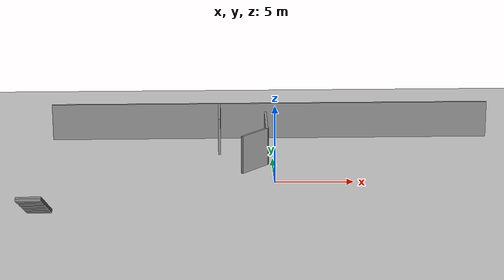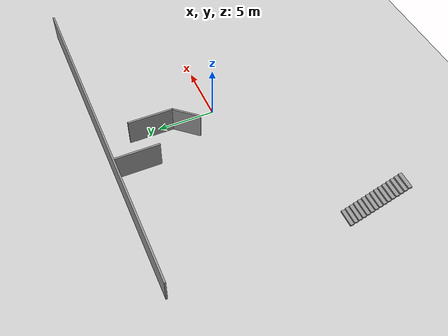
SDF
<sdf version="1.7">
 <world name="default">
  <model name="ground_plane">
   <static>1</static>
   <link name="link">
    <collision name="collision">
     <geometry><plane><normal>0 0 1</normal><size>100 100</size></plane></geometry>
     <surface>
      <contact><collide_bitmask>65535</collide_bitmask></contact>
      <friction><ode><mu>100</mu><mu2>50</mu2></ode></friction>
     </surface>
    </collision>
    <visual name="visual">
     <cast_shadows>0</cast_shadows>
     <geometry><plane><normal>0 0 1</normal><size>100 100</size></plane></geometry>
     <material>
      <script><uri>file://media/materials/scripts/gazebo.material</uri><name>Gazebo/Grey</name></script>
     </material>
    </visual>
   </link>
  </model>
  <model name="Untitled_0">
   <link name="Stairs_0">
    <visual name="Stairs_0_Visual_0">
     <pose>-14.3145 -5.2358 0.083333 0 -0 0</pose>
     <geometry><box><size>1.45112 0.330096 0.166667</size></box></geometry>
     <material>
      <script><uri>file://media/materials/scripts/gazebo.material</uri><name>Gazebo/Grey</name></script>
      <ambient>1 1 1 1</ambient>
      <shader type="pixel"/>
     </material>
     <meta><layer>0</layer></meta>
    </visual>
    <visual name="Stairs_0_Visual_1">
     <pose>-14.3145 -5.5659 0.25 0 -0 0</pose>
     <geometry><box><size>1.45112 0.330096 0.166667</size></box></geometry>
     <material>
      <script><uri>file://media/materials/scripts/gazebo.material</uri><name>Gazebo/Grey</name></script>
      <ambient>1 1 1 1</ambient>
      <shader type="pixel"/>
     </material>
     <meta><layer>0</layer></meta>
    </visual>
    <visual name="Stairs_0_Visual_2">
     <pose>-14.3145 -5.89599 0.416667 0 -0 0</pose>
     <geometry><box><size>1.45112 0.330096 0.166667</size></box></geometry>
     <material>
      <script><uri>file://media/materials/scripts/gazebo.material</uri><name>Gazebo/Grey</name></script>
      <ambient>1 1 1 1</ambient>
      <shader type="pixel"/>
     </material>
     <meta><layer>0</layer></meta>
    </visual>
    <visual name="Stairs_0_Visual_3">
     <pose>-14.3145 -6.22609 0.583333 0 -0 0</pose>
     <geometry><box><size>1.45112 0.330096 0.166667</size></box></geometry>
     <material>
      <script><uri>file://media/materials/scripts/gazebo.material</uri><name>Gazebo/Grey</name></script>
      <ambient>1 1 1 1</ambient>
      <shader type="pixel"/>
     </material>
     <meta><layer>0</layer></meta>
    </visual>
    <visual name="Stairs_0_Visual_4">
     <pose>-14.3145 -6.55619 0.75 0 -0 0</pose>
     <geometry><box><size>1.45112 0.330096 0.166667</size></box></geometry>
     <material>
      <script><uri>file://media/materials/scripts/gazebo.material</uri><name>Gazebo/Grey</name></script>
      <ambient>1 1 1 1</ambient>
      <shader type="pixel"/>
     </material>
     <meta><layer>0</layer></meta>
    </visual>
    <visual name="Stairs_0_Visual_5">
     <pose>-14.3145 -6.88628 0.916667 0 -0 0</pose>
     <geometry><box><size>1.45112 0.330096 0.166667</size></box></geometry>
     <material>
      <script><uri>file://media/materials/scripts/gazebo.material</uri><name>Gazebo/Grey</name></script>
      <ambient>1 1 1 1</ambient>
      <shader type="pixel"/>
     </material>
     <meta><layer>0</layer></meta>
    </visual>
    <visual name="Stairs_0_Visual_6">
     <pose>-14.3145 -7.21638 1.08333 0 -0 0</pose>
     <geometry><box><size>1.45112 0.330096 0.166667</size></box></geometry>
     <material>
      <script><uri>file://media/materials/scripts/gazebo.material</uri><name>Gazebo/Grey</name></script>
      <ambient>1 1 1 1</ambient>
      <shader type="pixel"/>
     </material>
     <meta><layer>0</layer></meta>
    </visual>
    <visual name="Stairs_0_Visual_7">
     <pose>-14.3145 -7.54648 1.25 0 -0 0</pose>
     <geometry><box><size>1.45112 0.330096 0.166667</size></box></geometry>
     <material>
      <script><uri>file://media/materials/scripts/gazebo.material</uri><name>Gazebo/Grey</name></script>
      <ambient>1 1 1 1</ambient>
      <shader type="pixel"/>
     </material>
     <meta><layer>0</layer></meta>
    </visual>
    <visual name="Stairs_0_Visual_8">
     <pose>-14.3145 -7.87657 1.41667 0 -0 0</pose>
     <geometry><box><size>1.45112 0.330096 0.166667</size></box></geometry>
     <material>
      <script><uri>file://media/materials/scripts/gazebo.material</uri><name>Gazebo/Grey</name></script>
      <ambient>1 1 1 1</ambient>
      <shader type="pixel"/>
     </material>
     <meta><layer>0</layer></meta>
    </visual>
    <visual name="Stairs_0_Visual_9">
     <pose>-14.3145 -8.20667 1.58333 0 -0 0</pose>
     <geometry><box><size>1.45112 0.330096 0.166667</size></box></geometry>
     <material>
      <script><uri>file://media/materials/scripts/gazebo.material</uri><name>Gazebo/Grey</name></script>
      <ambient>1 1 1 1</ambient>
      <shader type="pixel"/>
     </material>
     <meta><layer>0</layer></meta>
    </visual>
    <visual name="Stairs_0_Visual_10">
     <pose>-14.3145 -8.53676 1.75 0 -0 0</pose>
     <geometry><box><size>1.45112 0.330096 0.166667</size></box></geometry>
     <material>
      <script><uri>file://media/materials/scripts/gazebo.material</uri><name>Gazebo/Grey</name></script>
      <ambient>1 1 1 1</ambient>
      <shader type="pixel"/>
     </material>
     <meta><layer>0</layer></meta>
    </visual>
    <visual name="Stairs_0_Visual_11">
     <pose>-14.3145 -8.86686 1.91667 0 -0 0</pose>
     <geometry><box><size>1.45112 0.330096 0.166667</size></box></geometry>
     <material>
      <script><uri>file://media/materials/scripts/gazebo.material</uri><name>Gazebo/Grey</name></script>
      <ambient>1 1 1 1</ambient>
      <shader type="pixel"/>
     </material>
     <meta><layer>0</layer></meta>
    </visual>
    <visual name="Stairs_0_Visual_12">
     <pose>-14.3145 -9.19696 2.08333 0 -0 0</pose>
     <geometry><box><size>1.45112 0.330096 0.166667</size></box></geometry>
     <material>
      <script><uri>file://media/materials/scripts/gazebo.material</uri><name>Gazebo/Grey</name></script>
      <ambient>1 1 1 1</ambient>
      <shader type="pixel"/>
     </material>
     <meta><layer>0</layer></meta>
    </visual>
    <visual name="Stairs_0_Visual_13">
     <pose>-14.3145 -9.52705 2.25 0 -0 0</pose>
     <geometry><box><size>1.45112 0.330096 0.166667</size></box></geometry>
     <material>
      <script><uri>file://media/materials/scripts/gazebo.material</uri><name>Gazebo/Grey</name></script>
      <ambient>1 1 1 1</ambient>
      <shader type="pixel"/>
     </material>
     <meta><layer>0</layer></meta>
    </visual>
    <visual name="Stairs_0_Visual_14">
     <pose>-14.3145 -9.85715 2.41667 0 -0 0</pose>
     <geometry><box><size>1.45112 0.330096 0.166667</size></box></geometry>
     <material>
      <script><uri>file://media/materials/scripts/gazebo.material</uri><name>Gazebo/Grey</name></script>
      <ambient>1 1 1 1</ambient>
      <shader type="pixel"/>
     </material>
     <meta><layer>0</layer></meta>
    </visual>
    <collision name="Stairs_0_Collision_0">
     <pose>-14.3145 -5.2358 0.083333 0 -0 0</pose>
     <geometry><box><size>1.45112 0.330096 0.166667</size></box></geometry>
     <surface>
      <friction>
       <ode><mu>1</mu><mu2>1</mu2><fdir1>0 0 0</fdir1><slip1>0</slip1><slip2>0</slip2></ode>
       <torsional>
        <coefficient>1</coefficient>
        <patch_radius>0</patch_radius>
        <surface_radius>0</surface_radius>
        <use_patch_radius>1</use_patch_radius>
        <ode><slip>0</slip></ode>
       </torsional>
      </friction>
      <bounce><restitution_coefficient>0</restitution_coefficient><threshold>1e+06</threshold></bounce>
      <contact>
       <collide_without_contact>0</collide_without_contact>
       <collide_without_contact_bitmask>1</collide_without_contact_bitmask>
       <collide_bitmask>1</collide_bitmask>
       <ode>
        <soft_cfm>0</soft_cfm>
        <soft_erp>0.2</soft_erp>
        <kp>1e+13</kp>
        <kd>1</kd>
        <max_vel>0.01</max_vel>
        <min_depth>0</min_depth>
       </ode>
       <bullet>
        <split_impulse>1</split_impulse>
        <split_impulse_penetration_threshold>-0.01</split_impulse_penetration_threshold>
        <soft_cfm>0</soft_cfm>
        <soft_erp>0.2</soft_erp>
        <kp>1e+13</kp>
        <kd>1</kd>
       </bullet>
      </contact>
     </surface>
    </collision>
    <collision name="Stairs_0_Collision_1">
     <pose>-14.3145 -5.5659 0.25 0 -0 0</pose>
     <geometry><box><size>1.45112 0.330096 0.166667</size></box></geometry>
     <surface>
      <friction>
       <ode><mu>1</mu><mu2>1</mu2><fdir1>0 0 0</fdir1><slip1>0</slip1><slip2>0</slip2></ode>
       <torsional>
        <coefficient>1</coefficient>
        <patch_radius>0</patch_radius>
        <surface_radius>0</surface_radius>
        <use_patch_radius>1</use_patch_radius>
        <ode><slip>0</slip></ode>
       </torsional>
      </friction>
      <bounce><restitution_coefficient>0</restitution_coefficient><threshold>1e+06</threshold></bounce>
      <contact>
       <collide_without_contact>0</collide_without_contact>
       <collide_without_contact_bitmask>1</collide_without_contact_bitmask>
       <collide_bitmask>1</collide_bitmask>
       <ode>
        <soft_cfm>0</soft_cfm>
        <soft_erp>0.2</soft_erp>
        <kp>1e+13</kp>
        <kd>1</kd>
        <max_vel>0.01</max_vel>
        <min_depth>0</min_depth>
       </ode>
       <bullet>
        <split_impulse>1</split_impulse>
        <split_impulse_penetration_threshold>-0.01</split_impulse_penetration_threshold>
        <soft_cfm>0</soft_cfm>
        <soft_erp>0.2</soft_erp>
        <kp>1e+13</kp>
        <kd>1</kd>
       </bullet>
      </contact>
     </surface>
    </collision>
    <collision name="Stairs_0_Collision_2">
     <pose>-14.3145 -5.89599 0.416667 0 -0 0</pose>
     <geometry><box><size>1.45112 0.330096 0.166667</size></box></geometry>
     <surface>
      <friction>
       <ode><mu>1</mu><mu2>1</mu2><fdir1>0 0 0</fdir1><slip1>0</slip1><slip2>0</slip2></ode>
       <torsional>
        <coefficient>1</coefficient>
        <patch_radius>0</patch_radius>
        <surface_radius>0</surface_radius>
        <use_patch_radius>1</use_patch_radius>
        <ode><slip>0</slip></ode>
       </torsional>
      </friction>
      <bounce><restitution_coefficient>0</restitution_coefficient><threshold>1e+06</threshold></bounce>
      <contact>
       <collide_without_contact>0</collide_without_contact>
       <collide_without_contact_bitmask>1</collide_without_contact_bitmask>
       <collide_bitmask>1</collide_bitmask>
       <ode>
        <soft_cfm>0</soft_cfm>
        <soft_erp>0.2</soft_erp>
        <kp>1e+13</kp>
        <kd>1</kd>
        <max_vel>0.01</max_vel>
        <min_depth>0</min_depth>
       </ode>
       <bullet>
        <split_impulse>1</split_impulse>
        <split_impulse_penetration_threshold>-0.01</split_impulse_penetration_threshold>
        <soft_cfm>0</soft_cfm>
        <soft_erp>0.2</soft_erp>
        <kp>1e+13</kp>
        <kd>1</kd>
       </bullet>
      </contact>
     </surface>
    </collision>
    <collision name="Stairs_0_Collision_4">
     <pose>-14.3145 -6.55619 0.75 0 -0 0</pose>
     <geometry><box><size>1.45112 0.330096 0.166667</size></box></geometry>
     <surface>
      <friction>
       <ode><mu>1</mu><mu2>1</mu2><fdir1>0 0 0</fdir1><slip1>0</slip1><slip2>0</slip2></ode>
       <torsional>
        <coefficient>1</coefficient>
        <patch_radius>0</patch_radius>
        <surface_radius>0</surface_radius>
        <use_patch_radius>1</use_patch_radius>
        <ode><slip>0</slip></ode>
       </torsional>
      </friction>
      <bounce><restitution_coefficient>0</restitution_coefficient><threshold>1e+06</threshold></bounce>
      <contact>
       <collide_without_contact>0</collide_without_contact>
       <collide_without_contact_bitmask>1</collide_without_contact_bitmask>
       <collide_bitmask>1</collide_bitmask>
       <ode>
        <soft_cfm>0</soft_cfm>
        <soft_erp>0.2</soft_erp>
        <kp>1e+13</kp>
        <kd>1</kd>
        <max_vel>0.01</max_vel>
        <min_depth>0</min_depth>
       </ode>
       <bullet>
        <split_impulse>1</split_impulse>
        <split_impulse_penetration_threshold>-0.01</split_impulse_penetration_threshold>
        <soft_cfm>0</soft_cfm>
        <soft_erp>0.2</soft_erp>
        <kp>1e+13</kp>
        <kd>1</kd>
       </bullet>
      </contact>
     </surface>
    </collision>
    <collision name="Stairs_0_Collision_3">
     <pose>-14.3145 -6.22609 0.583333 0 -0 0</pose>
     <geometry><box><size>1.45112 0.330096 0.166667</size></box></geometry>
     <surface>
      <friction>
       <ode><mu>1</mu><mu2>1</mu2><fdir1>0 0 0</fdir1><slip1>0</slip1><slip2>0</slip2></ode>
       <torsional>
        <coefficient>1</coefficient>
        <patch_radius>0</patch_radius>
        <surface_radius>0</surface_radius>
        <use_patch_radius>1</use_patch_radius>
        <ode><slip>0</slip></ode>
       </torsional>
      </friction>
      <bounce><restitution_coefficient>0</restitution_coefficient><threshold>1e+06</threshold></bounce>
      <contact>
       <collide_without_contact>0</collide_without_contact>
       <collide_without_contact_bitmask>1</collide_without_contact_bitmask>
       <collide_bitmask>1</collide_bitmask>
       <ode>
        <soft_cfm>0</soft_cfm>
        <soft_erp>0.2</soft_erp>
        <kp>1e+13</kp>
        <kd>1</kd>
        <max_vel>0.01</max_vel>
        <min_depth>0</min_depth>
       </ode>
       <bullet>
        <split_impulse>1</split_impulse>
        <split_impulse_penetration_threshold>-0.01</split_impulse_penetration_threshold>
        <soft_cfm>0</soft_cfm>
        <soft_erp>0.2</soft_erp>
        <kp>1e+13</kp>
        <kd>1</kd>
       </bullet>
      </contact>
     </surface>
    </collision>
    <collision name="Stairs_0_Collision_5">
     <pose>-14.3145 -6.88628 0.916667 0 -0 0</pose>
     <geometry><box><size>1.45112 0.330096 0.166667</size></box></geometry>
     <surface>
      <friction>
       <ode><mu>1</mu><mu2>1</mu2><fdir1>0 0 0</fdir1><slip1>0</slip1><slip2>0</slip2></ode>
       <torsional>
        <coefficient>1</coefficient>
        <patch_radius>0</patch_radius>
        <surface_radius>0</surface_radius>
        <use_patch_radius>1</use_patch_radius>
        <ode><slip>0</slip></ode>
       </torsional>
      </friction>
      <bounce><restitution_coefficient>0</restitution_coefficient><threshold>1e+06</threshold></bounce>
      <contact>
       <collide_without_contact>0</collide_without_contact>
       <collide_without_contact_bitmask>1</collide_without_contact_bitmask>
       <collide_bitmask>1</collide_bitmask>
       <ode>
        <soft_cfm>0</soft_cfm>
        <soft_erp>0.2</soft_erp>
        <kp>1e+13</kp>
        <kd>1</kd>
        <max_vel>0.01</max_vel>
        <min_depth>0</min_depth>
       </ode>
       <bullet>
        <split_impulse>1</split_impulse>
        <split_impulse_penetration_threshold>-0.01</split_impulse_penetration_threshold>
        <soft_cfm>0</soft_cfm>
        <soft_erp>0.2</soft_erp>
        <kp>1e+13</kp>
        <kd>1</kd>
       </bullet>
      </contact>
     </surface>
    </collision>
    <collision name="Stairs_0_Collision_6">
     <pose>-14.3145 -7.21638 1.08333 0 -0 0</pose>
     <geometry><box><size>1.45112 0.330096 0.166667</size></box></geometry>
     <surface>
      <friction>
       <ode><mu>1</mu><mu2>1</mu2><fdir1>0 0 0</fdir1><slip1>0</slip1><slip2>0</slip2></ode>
       <torsional>
        <coefficient>1</coefficient>
        <patch_radius>0</patch_radius>
        <surface_radius>0</surface_radius>
        <use_patch_radius>1</use_patch_radius>
        <ode><slip>0</slip></ode>
       </torsional>
      </friction>
      <bounce><restitution_coefficient>0</restitution_coefficient><threshold>1e+06</threshold></bounce>
      <contact>
       <collide_without_contact>0</collide_without_contact>
       <collide_without_contact_bitmask>1</collide_without_contact_bitmask>
       <collide_bitmask>1</collide_bitmask>
       <ode>
        <soft_cfm>0</soft_cfm>
        <soft_erp>0.2</soft_erp>
        <kp>1e+13</kp>
        <kd>1</kd>
        <max_vel>0.01</max_vel>
        <min_depth>0</min_depth>
       </ode>
       <bullet>
        <split_impulse>1</split_impulse>
        <split_impulse_penetration_threshold>-0.01</split_impulse_penetration_threshold>
        <soft_cfm>0</soft_cfm>
        <soft_erp>0.2</soft_erp>
        <kp>1e+13</kp>
        <kd>1</kd>
       </bullet>
      </contact>
     </surface>
    </collision>
    <collision name="Stairs_0_Collision_7">
     <pose>-14.3145 -7.54648 1.25 0 -0 0</pose>
     <geometry><box><size>1.45112 0.330096 0.166667</size></box></geometry>
     <surface>
      <friction>
       <ode><mu>1</mu><mu2>1</mu2><fdir1>0 0 0</fdir1><slip1>0</slip1><slip2>0</slip2></ode>
       <torsional>
        <coefficient>1</coefficient>
        <patch_radius>0</patch_radius>
        <surface_radius>0</surface_radius>
        <use_patch_radius>1</use_patch_radius>
        <ode><slip>0</slip></ode>
       </torsional>
      </friction>
      <bounce><restitution_coefficient>0</restitution_coefficient><threshold>1e+06</threshold></bounce>
      <contact>
       <collide_without_contact>0</collide_without_contact>
       <collide_without_contact_bitmask>1</collide_without_contact_bitmask>
       <collide_bitmask>1</collide_bitmask>
       <ode>
        <soft_cfm>0</soft_cfm>
        <soft_erp>0.2</soft_erp>
        <kp>1e+13</kp>
        <kd>1</kd>
        <max_vel>0.01</max_vel>
        <min_depth>0</min_depth>
       </ode>
       <bullet>
        <split_impulse>1</split_impulse>
        <split_impulse_penetration_threshold>-0.01</split_impulse_penetration_threshold>
        <soft_cfm>0</soft_cfm>
        <soft_erp>0.2</soft_erp>
        <kp>1e+13</kp>
        <kd>1</kd>
       </bullet>
      </contact>
     </surface>
    </collision>
    <collision name="Stairs_0_Collision_8">
     <pose>-14.3145 -7.87657 1.41667 0 -0 0</pose>
     <geometry><box><size>1.45112 0.330096 0.166667</size></box></geometry>
     <surface>
      <friction>
       <ode><mu>1</mu><mu2>1</mu2><fdir1>0 0 0</fdir1><slip1>0</slip1><slip2>0</slip2></ode>
       <torsional>
        <coefficient>1</coefficient>
        <patch_radius>0</patch_radius>
        <surface_radius>0</surface_radius>
        <use_patch_radius>1</use_patch_radius>
        <ode><slip>0</slip></ode>
       </torsional>
      </friction>
      <bounce><restitution_coefficient>0</restitution_coefficient><threshold>1e+06</threshold></bounce>
      <contact>
       <collide_without_contact>0</collide_without_contact>
       <collide_without_contact_bitmask>1</collide_without_contact_bitmask>
       <collide_bitmask>1</collide_bitmask>
       <ode>
        <soft_cfm>0</soft_cfm>
        <soft_erp>0.2</soft_erp>
        <kp>1e+13</kp>
        <kd>1</kd>
        <max_vel>0.01</max_vel>
        <min_depth>0</min_depth>
       </ode>
       <bullet>
        <split_impulse>1</split_impulse>
        <split_impulse_penetration_threshold>-0.01</split_impulse_penetration_threshold>
        <soft_cfm>0</soft_cfm>
        <soft_erp>0.2</soft_erp>
        <kp>1e+13</kp>
        <kd>1</kd>
       </bullet>
      </contact>
     </surface>
    </collision>
    <collision name="Stairs_0_Collision_9">
     <pose>-14.3145 -8.20667 1.58333 0 -0 0</pose>
     <geometry><box><size>1.45112 0.330096 0.166667</size></box></geometry>
     <surface>
      <friction>
       <ode><mu>1</mu><mu2>1</mu2><fdir1>0 0 0</fdir1><slip1>0</slip1><slip2>0</slip2></ode>
       <torsional>
        <coefficient>1</coefficient>
        <patch_radius>0</patch_radius>
        <surface_radius>0</surface_radius>
        <use_patch_radius>1</use_patch_radius>
        <ode><slip>0</slip></ode>
       </torsional>
      </friction>
      <bounce><restitution_coefficient>0</restitution_coefficient><threshold>1e+06</threshold></bounce>
      <contact>
       <collide_without_contact>0</collide_without_contact>
       <collide_without_contact_bitmask>1</collide_without_contact_bitmask>
       <collide_bitmask>1</collide_bitmask>
       <ode>
        <soft_cfm>0</soft_cfm>
        <soft_erp>0.2</soft_erp>
        <kp>1e+13</kp>
        <kd>1</kd>
        <max_vel>0.01</max_vel>
        <min_depth>0</min_depth>
       </ode>
       <bullet>
        <split_impulse>1</split_impulse>
        <split_impulse_penetration_threshold>-0.01</split_impulse_penetration_threshold>
        <soft_cfm>0</soft_cfm>
        <soft_erp>0.2</soft_erp>
        <kp>1e+13</kp>
        <kd>1</kd>
       </bullet>
      </contact>
     </surface>
    </collision>
    <collision name="Stairs_0_Collision_10">
     <pose>-14.3145 -8.53676 1.75 0 -0 0</pose>
     <geometry><box><size>1.45112 0.330096 0.166667</size></box></geometry>
     <surface>
      <friction>
       <ode><mu>1</mu><mu2>1</mu2><fdir1>0 0 0</fdir1><slip1>0</slip1><slip2>0</slip2></ode>
       <torsional>
        <coefficient>1</coefficient>
        <patch_radius>0</patch_radius>
        <surface_radius>0</surface_radius>
        <use_patch_radius>1</use_patch_radius>
        <ode><slip>0</slip></ode>
       </torsional>
      </friction>
      <bounce><restitution_coefficient>0</restitution_coefficient><threshold>1e+06</threshold></bounce>
      <contact>
       <collide_without_contact>0</collide_without_contact>
       <collide_without_contact_bitmask>1</collide_without_contact_bitmask>
       <collide_bitmask>1</collide_bitmask>
       <ode>
        <soft_cfm>0</soft_cfm>
        <soft_erp>0.2</soft_erp>
        <kp>1e+13</kp>
        <kd>1</kd>
        <max_vel>0.01</max_vel>
        <min_depth>0</min_depth>
       </ode>
       <bullet>
        <split_impulse>1</split_impulse>
        <split_impulse_penetration_threshold>-0.01</split_impulse_penetration_threshold>
        <soft_cfm>0</soft_cfm>
        <soft_erp>0.2</soft_erp>
        <kp>1e+13</kp>
        <kd>1</kd>
       </bullet>
      </contact>
     </surface>
    </collision>
    <collision name="Stairs_0_Collision_12">
     <pose>-14.3145 -9.19696 2.08333 0 -0 0</pose>
     <geometry><box><size>1.45112 0.330096 0.166667</size></box></geometry>
     <surface>
      <friction>
       <ode><mu>1</mu><mu2>1</mu2><fdir1>0 0 0</fdir1><slip1>0</slip1><slip2>0</slip2></ode>
       <torsional>
        <coefficient>1</coefficient>
        <patch_radius>0</patch_radius>
        <surface_radius>0</surface_radius>
        <use_patch_radius>1</use_patch_radius>
        <ode><slip>0</slip></ode>
       </torsional>
      </friction>
      <bounce><restitution_coefficient>0</restitution_coefficient><threshold>1e+06</threshold></bounce>
      <contact>
       <collide_without_contact>0</collide_without_contact>
       <collide_without_contact_bitmask>1</collide_without_contact_bitmask>
       <collide_bitmask>1</collide_bitmask>
       <ode>
        <soft_cfm>0</soft_cfm>
        <soft_erp>0.2</soft_erp>
        <kp>1e+13</kp>
        <kd>1</kd>
        <max_vel>0.01</max_vel>
        <min_depth>0</min_depth>
       </ode>
       <bullet>
        <split_impulse>1</split_impulse>
        <split_impulse_penetration_threshold>-0.01</split_impulse_penetration_threshold>
        <soft_cfm>0</soft_cfm>
        <soft_erp>0.2</soft_erp>
        <kp>1e+13</kp>
        <kd>1</kd>
       </bullet>
      </contact>
     </surface>
    </collision>
    <collision name="Stairs_0_Collision_11">
     <pose>-14.3145 -8.86686 1.91667 0 -0 0</pose>
     <geometry><box><size>1.45112 0.330096 0.166667</size></box></geometry>
     <surface>
      <friction>
       <ode><mu>1</mu><mu2>1</mu2><fdir1>0 0 0</fdir1><slip1>0</slip1><slip2>0</slip2></ode>
       <torsional>
        <coefficient>1</coefficient>
        <patch_radius>0</patch_radius>
        <surface_radius>0</surface_radius>
        <use_patch_radius>1</use_patch_radius>
        <ode><slip>0</slip></ode>
       </torsional>
      </friction>
      <bounce><restitution_coefficient>0</restitution_coefficient><threshold>1e+06</threshold></bounce>
      <contact>
       <collide_without_contact>0</collide_without_contact>
       <collide_without_contact_bitmask>1</collide_without_contact_bitmask>
       <collide_bitmask>1</collide_bitmask>
       <ode>
        <soft_cfm>0</soft_cfm>
        <soft_erp>0.2</soft_erp>
        <kp>1e+13</kp>
        <kd>1</kd>
        <max_vel>0.01</max_vel>
        <min_depth>0</min_depth>
       </ode>
       <bullet>
        <split_impulse>1</split_impulse>
        <split_impulse_penetration_threshold>-0.01</split_impulse_penetration_threshold>
        <soft_cfm>0</soft_cfm>
        <soft_erp>0.2</soft_erp>
        <kp>1e+13</kp>
        <kd>1</kd>
       </bullet>
      </contact>
     </surface>
    </collision>
    <collision name="Stairs_0_Collision_13">
     <pose>-14.3145 -9.52705 2.25 0 -0 0</pose>
     <geometry><box><size>1.45112 0.330096 0.166667</size></box></geometry>
     <surface>
      <friction>
       <ode><mu>1</mu><mu2>1</mu2><fdir1>0 0 0</fdir1><slip1>0</slip1><slip2>0</slip2></ode>
       <torsional>
        <coefficient>1</coefficient>
        <patch_radius>0</patch_radius>
        <surface_radius>0</surface_radius>
        <use_patch_radius>1</use_patch_radius>
        <ode><slip>0</slip></ode>
       </torsional>
      </friction>
      <bounce><restitution_coefficient>0</restitution_coefficient><threshold>1e+06</threshold></bounce>
      <contact>
       <collide_without_contact>0</collide_without_contact>
       <collide_without_contact_bitmask>1</collide_without_contact_bitmask>
       <collide_bitmask>1</collide_bitmask>
       <ode>
        <soft_cfm>0</soft_cfm>
        <soft_erp>0.2</soft_erp>
        <kp>1e+13</kp>
        <kd>1</kd>
        <max_vel>0.01</max_vel>
        <min_depth>0</min_depth>
       </ode>
       <bullet>
        <split_impulse>1</split_impulse>
        <split_impulse_penetration_threshold>-0.01</split_impulse_penetration_threshold>
        <soft_cfm>0</soft_cfm>
        <soft_erp>0.2</soft_erp>
        <kp>1e+13</kp>
        <kd>1</kd>
       </bullet>
      </contact>
     </surface>
    </collision>
    <collision name="Stairs_0_Collision_14">
     <pose>-14.3145 -9.85715 2.41667 0 -0 0</pose>
     <geometry><box><size>1.45112 0.330096 0.166667</size></box></geometry>
     <surface>
      <friction>
       <ode><mu>1</mu><mu2>1</mu2><fdir1>0 0 0</fdir1><slip1>0</slip1><slip2>0</slip2></ode>
       <torsional>
        <coefficient>1</coefficient>
        <patch_radius>0</patch_radius>
        <surface_radius>0</surface_radius>
        <use_patch_radius>1</use_patch_radius>
        <ode><slip>0</slip></ode>
       </torsional>
      </friction>
      <bounce><restitution_coefficient>0</restitution_coefficient><threshold>1e+06</threshold></bounce>
      <contact>
       <collide_without_contact>0</collide_without_contact>
       <collide_without_contact_bitmask>1</collide_without_contact_bitmask>
       <collide_bitmask>1</collide_bitmask>
       <ode>
        <soft_cfm>0</soft_cfm>
        <soft_erp>0.2</soft_erp>
        <kp>1e+13</kp>
        <kd>1</kd>
        <max_vel>0.01</max_vel>
        <min_depth>0</min_depth>
       </ode>
       <bullet>
        <split_impulse>1</split_impulse>
        <split_impulse_penetration_threshold>-0.01</split_impulse_penetration_threshold>
        <soft_cfm>0</soft_cfm>
        <soft_erp>0.2</soft_erp>
        <kp>1e+13</kp>
        <kd>1</kd>
       </bullet>
      </contact>
     </surface>
    </collision>
   </link>
   <link name="Wall_59">
    <pose>-3.55282 8.05931 0 0 -0 1.5708</pose>
    <visual name="Wall_59_Visual">
     <pose>0 0 1.25 0 -0 0</pose>
     <geometry><box><size>4 0.15 2.5</size></box></geometry>
     <material>
      <script><uri>file://media/materials/scripts/gazebo.material</uri><name>Gazebo/Grey</name></script>
      <ambient>1 1 1 1</ambient>
      <shader type="pixel"/>
     </material>
     <meta><layer>0</layer></meta>
    </visual>
    <collision name="Wall_59_Collision">
     <pose>0 0 1.25 0 -0 0</pose>
     <geometry><box><size>4 0.15 2.5</size></box></geometry>
     <surface>
      <friction>
       <ode><mu>1</mu><mu2>1</mu2><fdir1>0 0 0</fdir1><slip1>0</slip1><slip2>0</slip2></ode>
       <torsional>
        <coefficient>1</coefficient>
        <patch_radius>0</patch_radius>
        <surface_radius>0</surface_radius>
        <use_patch_radius>1</use_patch_radius>
        <ode><slip>0</slip></ode>
       </torsional>
      </friction>
      <bounce><restitution_coefficient>0</restitution_coefficient><threshold>1e+06</threshold></bounce>
      <contact>
       <collide_without_contact>0</collide_without_contact>
       <collide_without_contact_bitmask>1</collide_without_contact_bitmask>
       <collide_bitmask>1</collide_bitmask>
       <ode>
        <soft_cfm>0</soft_cfm>
        <soft_erp>0.2</soft_erp>
        <kp>1e+13</kp>
        <kd>1</kd>
        <max_vel>0.01</max_vel>
        <min_depth>0</min_depth>
       </ode>
       <bullet>
        <split_impulse>1</split_impulse>
        <split_impulse_penetration_threshold>-0.01</split_impulse_penetration_threshold>
        <soft_cfm>0</soft_cfm>
        <soft_erp>0.2</soft_erp>
        <kp>1e+13</kp>
        <kd>1</kd>
       </bullet>
      </contact>
     </surface>
    </collision>
   </link>
   <link name="Wall_64">
    <pose>-0.422418 5.75345 0 0 0 -1.5708</pose>
    <visual name="Wall_64_Visual">
     <pose>0 0 1.25 0 -0 0</pose>
     <geometry><box><size>4 0.15 2.5</size></box></geometry>
     <material>
      <script><uri>file://media/materials/scripts/gazebo.material</uri><name>Gazebo/Grey</name></script>
      <ambient>1 1 1 1</ambient>
      <shader type="pixel"/>
     </material>
     <meta><layer>0</layer></meta>
    </visual>
    <collision name="Wall_64_Collision">
     <pose>0 0 1.25 0 -0 0</pose>
     <geometry><box><size>4 0.15 2.5</size></box></geometry>
     <surface>
      <friction>
       <ode><mu>1</mu><mu2>1</mu2><fdir1>0 0 0</fdir1><slip1>0</slip1><slip2>0</slip2></ode>
       <torsional>
        <coefficient>1</coefficient>
        <patch_radius>0</patch_radius>
        <surface_radius>0</surface_radius>
        <use_patch_radius>1</use_patch_radius>
        <ode><slip>0</slip></ode>
       </torsional>
      </friction>
      <bounce><restitution_coefficient>0</restitution_coefficient><threshold>1e+06</threshold></bounce>
      <contact>
       <collide_without_contact>0</collide_without_contact>
       <collide_without_contact_bitmask>1</collide_without_contact_bitmask>
       <collide_bitmask>1</collide_bitmask>
       <ode>
        <soft_cfm>0</soft_cfm>
        <soft_erp>0.2</soft_erp>
        <kp>1e+13</kp>
        <kd>1</kd>
        <max_vel>0.01</max_vel>
        <min_depth>0</min_depth>
       </ode>
       <bullet>
        <split_impulse>1</split_impulse>
        <split_impulse_penetration_threshold>-0.01</split_impulse_penetration_threshold>
        <soft_cfm>0</soft_cfm>
        <soft_erp>0.2</soft_erp>
        <kp>1e+13</kp>
        <kd>1</kd>
       </bullet>
      </contact>
     </surface>
    </collision>
   </link>
   <link name="Wall_65">
    <pose>-1.22529 2.91209 0 0 0 -2.29028</pose>
    <visual name="Wall_65_Visual">
     <pose>0 0 1.25 0 -0 0</pose>
     <geometry><box><size>2.58664 0.15 2.5</size></box></geometry>
     <material>
      <script><uri>file://media/materials/scripts/gazebo.material</uri><name>Gazebo/Grey</name></script>
      <ambient>1 1 1 1</ambient>
      <shader type="pixel"/>
     </material>
     <meta><layer>0</layer></meta>
    </visual>
    <collision name="Wall_65_Collision">
     <pose>0 0 1.25 0 -0 0</pose>
     <geometry><box><size>2.58664 0.15 2.5</size></box></geometry>
     <surface>
      <friction>
       <ode><mu>1</mu><mu2>1</mu2><fdir1>0 0 0</fdir1><slip1>0</slip1><slip2>0</slip2></ode>
       <torsional>
        <coefficient>1</coefficient>
        <patch_radius>0</patch_radius>
        <surface_radius>0</surface_radius>
        <use_patch_radius>1</use_patch_radius>
        <ode><slip>0</slip></ode>
       </torsional>
      </friction>
      <bounce><restitution_coefficient>0</restitution_coefficient><threshold>1e+06</threshold></bounce>
      <contact>
       <collide_without_contact>0</collide_without_contact>
       <collide_without_contact_bitmask>1</collide_without_contact_bitmask>
       <collide_bitmask>1</collide_bitmask>
       <ode>
        <soft_cfm>0</soft_cfm>
        <soft_erp>0.2</soft_erp>
        <kp>1e+13</kp>
        <kd>1</kd>
        <max_vel>0.01</max_vel>
        <min_depth>0</min_depth>
       </ode>
       <bullet>
        <split_impulse>1</split_impulse>
        <split_impulse_penetration_threshold>-0.01</split_impulse_penetration_threshold>
        <soft_cfm>0</soft_cfm>
        <soft_erp>0.2</soft_erp>
        <kp>1e+13</kp>
        <kd>1</kd>
       </bullet>
      </contact>
     </surface>
    </collision>
   </link>
   <link name="Wall_7">
    <pose>-0.028156 9.99574 0 0 -0 0</pose>
    <visual name="Wall_7_Visual">
     <pose>0 0 1.25 0 -0 0</pose>
     <geometry><box><size>30.15 0.15 2.5</size></box></geometry>
     <material>
      <script><uri>file://media/materials/scripts/gazebo.material</uri><name>Gazebo/Grey</name></script>
      <ambient>1 1 1 1</ambient>
      <shader type="pixel"/>
     </material>
     <meta><layer>0</layer></meta>
    </visual>
    <collision name="Wall_7_Collision">
     <pose>0 0 1.25 0 -0 0</pose>
     <geometry><box><size>30.15 0.15 2.5</size></box></geometry>
     <surface>
      <friction>
       <ode><mu>1</mu><mu2>1</mu2><fdir1>0 0 0</fdir1><slip1>0</slip1><slip2>0</slip2></ode>
       <torsional>
        <coefficient>1</coefficient>
        <patch_radius>0</patch_radius>
        <surface_radius>0</surface_radius>
        <use_patch_radius>1</use_patch_radius>
        <ode><slip>0</slip></ode>
       </torsional>
      </friction>
      <bounce><restitution_coefficient>0</restitution_coefficient><threshold>1e+06</threshold></bounce>
      <contact>
       <collide_without_contact>0</collide_without_contact>
       <collide_without_contact_bitmask>1</collide_without_contact_bitmask>
       <collide_bitmask>1</collide_bitmask>
       <ode>
        <soft_cfm>0</soft_cfm>
        <soft_erp>0.2</soft_erp>
        <kp>1e+13</kp>
        <kd>1</kd>
        <max_vel>0.01</max_vel>
        <min_depth>0</min_depth>
       </ode>
       <bullet>
        <split_impulse>1</split_impulse>
        <split_impulse_penetration_threshold>-0.01</split_impulse_penetration_threshold>
        <soft_cfm>0</soft_cfm>
        <soft_erp>0.2</soft_erp>
        <kp>1e+13</kp>
        <kd>1</kd>
       </bullet>
      </contact>
     </surface>
    </collision>
   </link>
   <static>1</static>
   <pose>0.028156 0.004264 0 0 -0 0</pose>
  </model>
 </world>
</sdf>
